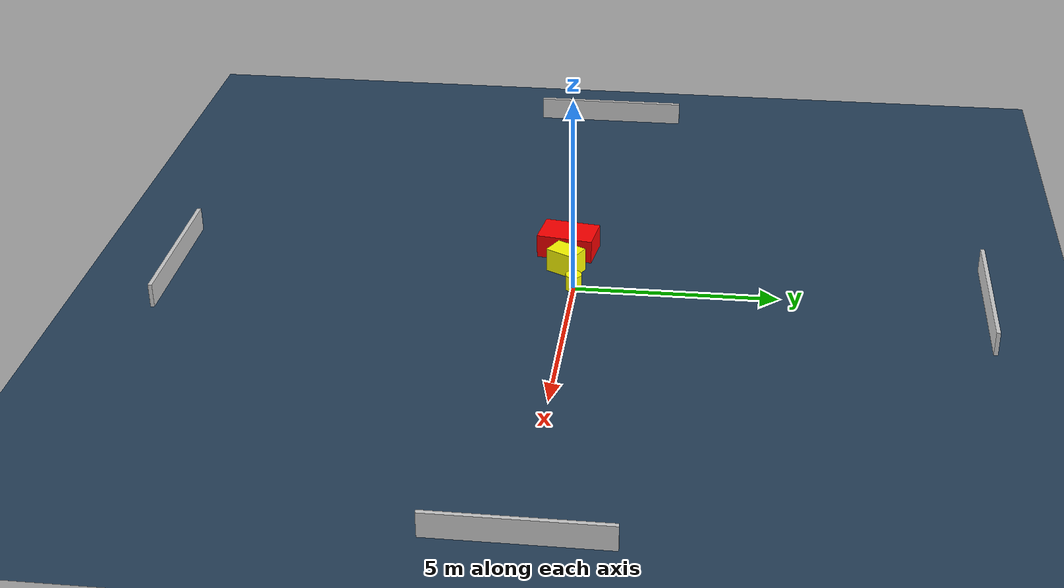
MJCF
<?xml version="1.0" ?>
<mujoco model="generated_environment">
  <option timestep="0.01" integrator="RK4" cone="elliptic"/>
  <default>
    <geom density="1"/>
  </default>
  <asset>
    <texture builtin="gradient" height="3072" name="skybox" rgb1="0.3 0.5 0.7" rgb2="0 0 0" type="skybox" width="512"/>
    <texture builtin="checker" height="300" name="groundplane" rgb1="0.2 0.3 0.4" rgb2="0.1 0.2 0.3" type="2d" width="300"/>
    <material name="groundplane" reflectance="0.2" texrepeat="5 5" texture="groundplane"/>
  </asset>
  <worldbody>
    <light dir="0 0 -1" directional="true" pos="0 0 1.5"/>
    <geom condim="3" friction="0.5 0.005 0.001" material="groundplane" name="floor" pos="0 0 0" size="0 0 0.05" type="plane"/>
    <body name="walls">
      <geom name="wall_1" condim="4" pos="-10.0 0.0 0.3" rgba="0.800000011920929 0.800000011920929 0.800000011920929 1.0" size="0.05 2.0 0.3" type="box"/>
      <geom name="wall_2" condim="4" pos="10.0 0.0 0.3" rgba="0.800000011920929 0.800000011920929 0.800000011920929 1.0" size="0.05 2.0 0.3" type="box"/>
      <geom name="wall_3" condim="4" pos="0.0 -10.0 0.3" rgba="0.800000011920929 0.800000011920929 0.800000011920929 1.0" size="2.0 0.05 0.3" type="box"/>
      <geom name="wall_4" condim="4" pos="0.0 10.0 0.3" rgba="0.800000011920929 0.800000011920929 0.800000011920929 1.0" size="2.0 0.05 0.3" type="box"/>
    </body>
    <body name="robot">
      <joint name="joint_x" type="slide" pos="0 0 0" axis="1 0 0"/>
      <joint name="joint_y" type="slide" pos="0 0 0" axis="0 1 0"/>
      <geom name="robot" type="cylinder" pos="0.0 0.0 0.2" size="0.2 0.2 0.0" mass="5.0" friction="1.0 0.005 0.0001" condim="4" rgba="1.0 1.0 0.0 1.0"/>
    </body>
    <body name="obstacle_1_movable">
      <geom name="obstacle_1_movable" condim="4" pos="-0.8928246924865906 -0.2895086426441175 0.3" euler="0 0 242.3987855338305" friction="0.0 0.005 0.001" rgba="1.0 1.0 0.0 1.0" size="0.3987733870091319 0.27715790769509346 0.3" type="box" mass="0.1"/>
      <joint type="free"/>
    </body>
    <body name="obstacle_2_static">
      <geom name="obstacle_2_static" condim="4" pos="-1.863957078801423 -0.33249510129717524 0.3" euler="0 0 171.76983814908297" friction="0.0 0.005 0.001" rgba="1.0 0.0 0.0 1.0" size="0.465389266882466 0.7058143528185328 0.3" type="box"/>
    </body>
  </worldbody>
  <actuator>
    <motor name="actuator_x" joint="joint_x" gear="1" ctrlrange="-1 1"/>
    <motor name="actuator_y" joint="joint_y" gear="1" ctrlrange="-1 1"/>
  </actuator>
</mujoco>
